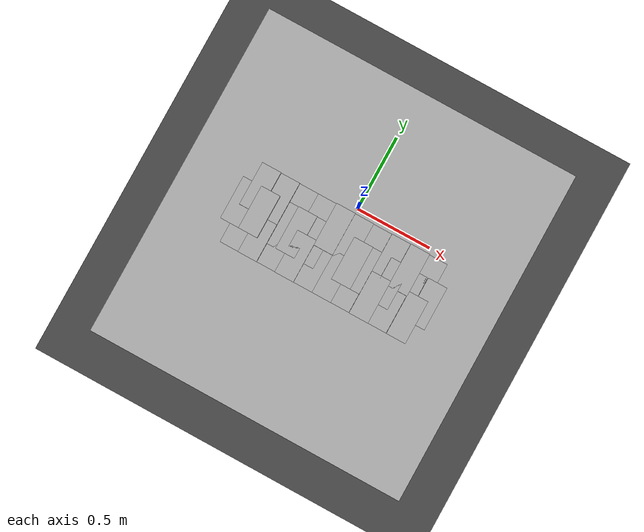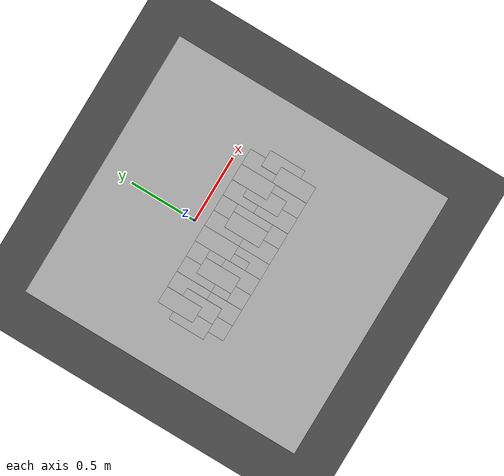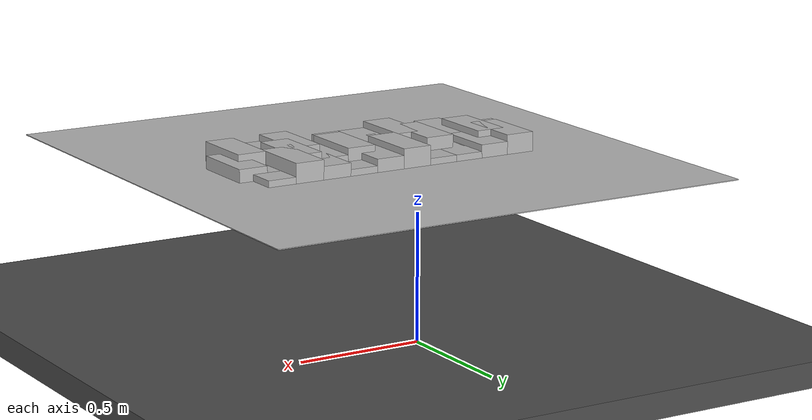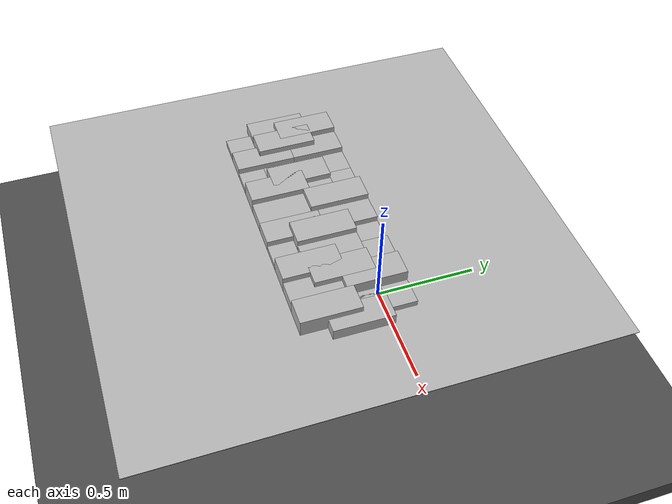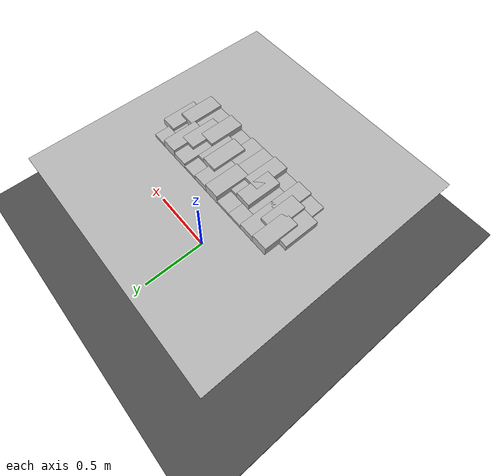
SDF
<sdf version="1.6">
 <world name="default">
  <model name="ground_plane">
   <static>1</static>
   <link name="link">
    <collision name="collision">
     <geometry><plane><normal>0 0 1</normal><size>100 100</size></plane></geometry>
     <surface><friction><ode><mu>100</mu><mu2>50</mu2></ode></friction></surface>
    </collision>
    <visual name="visual">
     <cast_shadows>0</cast_shadows>
     <geometry><plane><normal>0 0 1</normal><size>100 100</size></plane></geometry>
     <material>
      <script><uri>file://media/materials/scripts/gazebo.material</uri><name>Gazebo/Grey</name></script>
     </material>
    </visual>
   </link>
  </model>
  <model name="frc2016_roughterrain_0">
   <link name="link_clone_4">
    <pose>0.109709 -0.354979 -0.073164 0 -0 0</pose>
    <inertial>
     <inertia><ixx>nan</ixx><ixy>0</ixy><ixz>0</ixz><iyy>nan</iyy><iyz>0</iyz><izz>nan</izz></inertia>
     <mass>0</mass>
    </inertial>
    <visual name="platform">
     <pose>0 0 0.08269 0 -0 0</pose>
     <geometry><box><size>1.91826 2.01688 0.003175</size></box></geometry>
     <material><shader type="pixel"/></material>
    </visual>
    <visual name="row1_block1_sm">
     <pose>0.51435 0.1143 0.09698 0 -0 0</pose>
     <geometry><box><size>0.115452 0.257474 0.0254</size></box></geometry>
     <material><shader type="pixel"/></material>
    </visual>
    <visual name="row1_block4_sm">
     <pose>0.17145 0.1143 0.09698 0 -0 0</pose>
     <geometry><box><size>0.115452 0.257474 0.0254</size></box></geometry>
     <material><shader type="pixel"/></material>
    </visual>
    <visual name="row1_block3_md">
     <pose>0.28575 0.1143 0.10968 0 -0 0</pose>
     <geometry><box><size>0.115452 0.257474 0.0508</size></box></geometry>
     <material><shader type="pixel"/></material>
    </visual>
    <visual name="row1_block2_lg">
     <pose>0.40005 0.1143 0.12238 0 -0 0</pose>
     <geometry><box><size>0.115452 0.257474 0.0762</size></box></geometry>
     <material><shader type="pixel"/></material>
    </visual>
    <visual name="row1_block5_md">
     <pose>0.05715 0.1143 0.10968 0 -0 0</pose>
     <geometry><box><size>0.115452 0.257474 0.0508</size></box></geometry>
     <material><shader type="pixel"/></material>
    </visual>
    <visual name="row1_block6_lg">
     <pose>-0.05715 0.1143 0.12238 0 -0 0</pose>
     <geometry><box><size>0.115452 0.257474 0.0762</size></box></geometry>
     <material><shader type="pixel"/></material>
    </visual>
    <visual name="row1_block8_sm">
     <pose>-0.28575 0.1143 0.09698 0 -0 0</pose>
     <geometry><box><size>0.115452 0.257474 0.0254</size></box></geometry>
     <material><shader type="pixel"/></material>
    </visual>
    <visual name="row1_block7_sm">
     <pose>-0.17145 0.1143 0.09698 0 -0 0</pose>
     <geometry><box><size>0.115452 0.257474 0.0254</size></box></geometry>
     <material><shader type="pixel"/></material>
    </visual>
    <visual name="row1_block9_md">
     <pose>-0.40005 0.1143 0.10968 0 -0 0</pose>
     <geometry><box><size>0.115452 0.257474 0.0508</size></box></geometry>
     <material><shader type="pixel"/></material>
    </visual>
    <visual name="row1_block10_lg">
     <pose>-0.51435 0.1143 0.12238 0 -0 0</pose>
     <geometry><box><size>0.115452 0.257474 0.0762</size></box></geometry>
     <material><shader type="pixel"/></material>
    </visual>
    <visual name="row2_block1_md">
     <pose>0.5715 0 0.10968 0 -0 0</pose>
     <geometry><box><size>0.115452 0.257474 0.0508</size></box></geometry>
     <material><shader type="pixel"/></material>
    </visual>
    <visual name="row2_block2_sm">
     <pose>0.4572 0 0.09698 0 -0 0</pose>
     <geometry><box><size>0.115452 0.257474 0.0254</size></box></geometry>
     <material><shader type="pixel"/></material>
    </visual>
    <visual name="row2_block3_lg">
     <pose>0.3429 0 0.12238 0 -0 0</pose>
     <geometry><box><size>0.115452 0.257474 0.0762</size></box></geometry>
     <material><shader type="pixel"/></material>
    </visual>
    <visual name="row2_block4_md">
     <pose>0.2286 0 0.10968 0 -0 0</pose>
     <geometry><box><size>0.115452 0.257474 0.0508</size></box></geometry>
     <material><shader type="pixel"/></material>
    </visual>
    <visual name="row2_block5_lg">
     <pose>0.1143 0 0.12238 0 -0 0</pose>
     <geometry><box><size>0.115452 0.257474 0.0762</size></box></geometry>
     <material><shader type="pixel"/></material>
    </visual>
    <visual name="row2_block6_sm">
     <pose>0 0 0.09698 0 -0 0</pose>
     <geometry><box><size>0.115452 0.257474 0.0254</size></box></geometry>
     <material><shader type="pixel"/></material>
    </visual>
    <visual name="row2_block7_md">
     <pose>-0.1143 0 0.10968 0 -0 0</pose>
     <geometry><box><size>0.115452 0.257474 0.0508</size></box></geometry>
     <material><shader type="pixel"/></material>
    </visual>
    <visual name="row2_block8_lg">
     <pose>-0.2286 0 0.12238 0 -0 0</pose>
     <geometry><box><size>0.115452 0.257474 0.0762</size></box></geometry>
     <material><shader type="pixel"/></material>
    </visual>
    <visual name="row2_block9_sm">
     <pose>-0.3429 0 0.09698 0 -0 0</pose>
     <geometry><box><size>0.115452 0.257474 0.0254</size></box></geometry>
     <material><shader type="pixel"/></material>
    </visual>
    <visual name="row2_block10_lg">
     <pose>-0.4572 0 0.12238 0 -0 0</pose>
     <geometry><box><size>0.115452 0.257474 0.0762</size></box></geometry>
     <material><shader type="pixel"/></material>
    </visual>
    <visual name="row2_block11_md">
     <pose>-0.5715 0 0.10968 0 -0 0</pose>
     <geometry><box><size>0.115452 0.257474 0.0508</size></box></geometry>
     <material><shader type="pixel"/></material>
    </visual>
    <visual name="row3_block2_md">
     <pose>0.40005 -0.1143 0.10968 0 -0 0</pose>
     <geometry><box><size>0.115452 0.257474 0.0508</size></box></geometry>
     <material><shader type="pixel"/></material>
    </visual>
    <visual name="row3_block1_lg">
     <pose>0.51435 -0.1143 0.12238 0 -0 0</pose>
     <geometry><box><size>0.115452 0.257474 0.0762</size></box></geometry>
     <material><shader type="pixel"/></material>
    </visual>
    <visual name="row3_block3_lg">
     <pose>0.28575 -0.1143 0.12238 0 -0 0</pose>
     <geometry><box><size>0.115452 0.257474 0.0762</size></box></geometry>
     <material><shader type="pixel"/></material>
    </visual>
    <visual name="row3_block4_sm">
     <pose>0.17145 -0.1143 0.09698 0 -0 0</pose>
     <geometry><box><size>0.115452 0.257474 0.0254</size></box></geometry>
     <material><shader type="pixel"/></material>
    </visual>
    <visual name="row3_block5_md">
     <pose>0.05715 -0.1143 0.10968 0 -0 0</pose>
     <geometry><box><size>0.115452 0.257474 0.0508</size></box></geometry>
     <material><shader type="pixel"/></material>
    </visual>
    <visual name="row3_block6_md">
     <pose>-0.05715 -0.1143 0.10968 0 -0 0</pose>
     <geometry><box><size>0.115452 0.257474 0.0508</size></box></geometry>
     <material><shader type="pixel"/></material>
    </visual>
    <visual name="row3_block8_sm">
     <pose>-0.28575 -0.1143 0.09698 0 -0 0</pose>
     <geometry><box><size>0.115452 0.257474 0.0254</size></box></geometry>
     <material><shader type="pixel"/></material>
    </visual>
    <visual name="row3_block7_lg">
     <pose>-0.17145 -0.1143 0.12238 0 -0 0</pose>
     <geometry><box><size>0.115452 0.257474 0.0762</size></box></geometry>
     <material><shader type="pixel"/></material>
    </visual>
    <visual name="row3_block9_md">
     <pose>-0.40005 -0.1143 0.10968 0 -0 0</pose>
     <geometry><box><size>0.115452 0.257474 0.0508</size></box></geometry>
     <material><shader type="pixel"/></material>
    </visual>
    <visual name="row3_block10_sm">
     <pose>-0.51435 -0.1143 0.09698 0 -0 0</pose>
     <geometry><box><size>0.115452 0.257474 0.0254</size></box></geometry>
     <material><shader type="pixel"/></material>
    </visual>
    <collision name="row2_block5_lg_0">
     <pose>0.1143 0 0.12238 0 -0 0</pose>
     <geometry><box><size>0.115452 0.257474 0.0762</size></box></geometry>
     <surface>
      <friction>
       <ode><mu>1</mu><mu2>1</mu2><fdir1>0 0 0</fdir1><slip1>0</slip1><slip2>0</slip2></ode>
       <torsional>
        <coefficient>1</coefficient>
        <patch_radius>0</patch_radius>
        <surface_radius>0</surface_radius>
        <use_patch_radius>1</use_patch_radius>
        <ode><slip>0</slip></ode>
       </torsional>
      </friction>
      <bounce><restitution_coefficient>0</restitution_coefficient><threshold>1e+06</threshold></bounce>
      <contact>
       <collide_without_contact>0</collide_without_contact>
       <collide_without_contact_bitmask>1</collide_without_contact_bitmask>
       <collide_bitmask>1</collide_bitmask>
       <ode>
        <soft_cfm>0</soft_cfm>
        <soft_erp>0.2</soft_erp>
        <kp>1e+13</kp>
        <kd>1</kd>
        <max_vel>0.01</max_vel>
        <min_depth>0</min_depth>
       </ode>
       <bullet>
        <split_impulse>1</split_impulse>
        <split_impulse_penetration_threshold>-0.01</split_impulse_penetration_threshold>
        <soft_cfm>0</soft_cfm>
        <soft_erp>0.2</soft_erp>
        <kp>1e+13</kp>
        <kd>1</kd>
       </bullet>
      </contact>
     </surface>
    </collision>
    <collision name="platform_0">
     <pose>0 0 0.08269 0 -0 0</pose>
     <geometry><box><size>1.91826 2.01688 0.003175</size></box></geometry>
     <surface>
      <friction>
       <ode><mu>1</mu><mu2>1</mu2><fdir1>0 0 0</fdir1><slip1>0</slip1><slip2>0</slip2></ode>
       <torsional>
        <coefficient>1</coefficient>
        <patch_radius>0</patch_radius>
        <surface_radius>0</surface_radius>
        <use_patch_radius>1</use_patch_radius>
        <ode><slip>0</slip></ode>
       </torsional>
      </friction>
      <bounce><restitution_coefficient>0</restitution_coefficient><threshold>1e+06</threshold></bounce>
      <contact>
       <collide_without_contact>0</collide_without_contact>
       <collide_without_contact_bitmask>1</collide_without_contact_bitmask>
       <collide_bitmask>1</collide_bitmask>
       <ode>
        <soft_cfm>0</soft_cfm>
        <soft_erp>0.2</soft_erp>
        <kp>1e+13</kp>
        <kd>1</kd>
        <max_vel>0.01</max_vel>
        <min_depth>0</min_depth>
       </ode>
       <bullet>
        <split_impulse>1</split_impulse>
        <split_impulse_penetration_threshold>-0.01</split_impulse_penetration_threshold>
        <soft_cfm>0</soft_cfm>
        <soft_erp>0.2</soft_erp>
        <kp>1e+13</kp>
        <kd>1</kd>
       </bullet>
      </contact>
     </surface>
    </collision>
    <collision name="row1_block1_sm_0">
     <pose>0.51435 0.1143 0.09698 0 -0 0</pose>
     <geometry><box><size>0.115452 0.257474 0.0254</size></box></geometry>
     <surface>
      <friction>
       <ode><mu>1</mu><mu2>1</mu2><fdir1>0 0 0</fdir1><slip1>0</slip1><slip2>0</slip2></ode>
       <torsional>
        <coefficient>1</coefficient>
        <patch_radius>0</patch_radius>
        <surface_radius>0</surface_radius>
        <use_patch_radius>1</use_patch_radius>
        <ode><slip>0</slip></ode>
       </torsional>
      </friction>
      <bounce><restitution_coefficient>0</restitution_coefficient><threshold>1e+06</threshold></bounce>
      <contact>
       <collide_without_contact>0</collide_without_contact>
       <collide_without_contact_bitmask>1</collide_without_contact_bitmask>
       <collide_bitmask>1</collide_bitmask>
       <ode>
        <soft_cfm>0</soft_cfm>
        <soft_erp>0.2</soft_erp>
        <kp>1e+13</kp>
        <kd>1</kd>
        <max_vel>0.01</max_vel>
        <min_depth>0</min_depth>
       </ode>
       <bullet>
        <split_impulse>1</split_impulse>
        <split_impulse_penetration_threshold>-0.01</split_impulse_penetration_threshold>
        <soft_cfm>0</soft_cfm>
        <soft_erp>0.2</soft_erp>
        <kp>1e+13</kp>
        <kd>1</kd>
       </bullet>
      </contact>
     </surface>
    </collision>
    <collision name="row1_block2_lg_0">
     <pose>0.40005 0.1143 0.12238 0 -0 0</pose>
     <geometry><box><size>0.115452 0.257474 0.0762</size></box></geometry>
     <surface>
      <friction>
       <ode><mu>1</mu><mu2>1</mu2><fdir1>0 0 0</fdir1><slip1>0</slip1><slip2>0</slip2></ode>
       <torsional>
        <coefficient>1</coefficient>
        <patch_radius>0</patch_radius>
        <surface_radius>0</surface_radius>
        <use_patch_radius>1</use_patch_radius>
        <ode><slip>0</slip></ode>
       </torsional>
      </friction>
      <bounce><restitution_coefficient>0</restitution_coefficient><threshold>1e+06</threshold></bounce>
      <contact>
       <collide_without_contact>0</collide_without_contact>
       <collide_without_contact_bitmask>1</collide_without_contact_bitmask>
       <collide_bitmask>1</collide_bitmask>
       <ode>
        <soft_cfm>0</soft_cfm>
        <soft_erp>0.2</soft_erp>
        <kp>1e+13</kp>
        <kd>1</kd>
        <max_vel>0.01</max_vel>
        <min_depth>0</min_depth>
       </ode>
       <bullet>
        <split_impulse>1</split_impulse>
        <split_impulse_penetration_threshold>-0.01</split_impulse_penetration_threshold>
        <soft_cfm>0</soft_cfm>
        <soft_erp>0.2</soft_erp>
        <kp>1e+13</kp>
        <kd>1</kd>
       </bullet>
      </contact>
     </surface>
    </collision>
    <collision name="row1_block3_md_0">
     <pose>0.28575 0.1143 0.10968 0 -0 0</pose>
     <geometry><box><size>0.115452 0.257474 0.0508</size></box></geometry>
     <surface>
      <friction>
       <ode><mu>1</mu><mu2>1</mu2><fdir1>0 0 0</fdir1><slip1>0</slip1><slip2>0</slip2></ode>
       <torsional>
        <coefficient>1</coefficient>
        <patch_radius>0</patch_radius>
        <surface_radius>0</surface_radius>
        <use_patch_radius>1</use_patch_radius>
        <ode><slip>0</slip></ode>
       </torsional>
      </friction>
      <bounce><restitution_coefficient>0</restitution_coefficient><threshold>1e+06</threshold></bounce>
      <contact>
       <collide_without_contact>0</collide_without_contact>
       <collide_without_contact_bitmask>1</collide_without_contact_bitmask>
       <collide_bitmask>1</collide_bitmask>
       <ode>
        <soft_cfm>0</soft_cfm>
        <soft_erp>0.2</soft_erp>
        <kp>1e+13</kp>
        <kd>1</kd>
        <max_vel>0.01</max_vel>
        <min_depth>0</min_depth>
       </ode>
       <bullet>
        <split_impulse>1</split_impulse>
        <split_impulse_penetration_threshold>-0.01</split_impulse_penetration_threshold>
        <soft_cfm>0</soft_cfm>
        <soft_erp>0.2</soft_erp>
        <kp>1e+13</kp>
        <kd>1</kd>
       </bullet>
      </contact>
     </surface>
    </collision>
    <collision name="row1_block5_md_0">
     <pose>0.05715 0.1143 0.10968 0 -0 0</pose>
     <geometry><box><size>0.115452 0.257474 0.0508</size></box></geometry>
     <surface>
      <friction>
       <ode><mu>1</mu><mu2>1</mu2><fdir1>0 0 0</fdir1><slip1>0</slip1><slip2>0</slip2></ode>
       <torsional>
        <coefficient>1</coefficient>
        <patch_radius>0</patch_radius>
        <surface_radius>0</surface_radius>
        <use_patch_radius>1</use_patch_radius>
        <ode><slip>0</slip></ode>
       </torsional>
      </friction>
      <bounce><restitution_coefficient>0</restitution_coefficient><threshold>1e+06</threshold></bounce>
      <contact>
       <collide_without_contact>0</collide_without_contact>
       <collide_without_contact_bitmask>1</collide_without_contact_bitmask>
       <collide_bitmask>1</collide_bitmask>
       <ode>
        <soft_cfm>0</soft_cfm>
        <soft_erp>0.2</soft_erp>
        <kp>1e+13</kp>
        <kd>1</kd>
        <max_vel>0.01</max_vel>
        <min_depth>0</min_depth>
       </ode>
       <bullet>
        <split_impulse>1</split_impulse>
        <split_impulse_penetration_threshold>-0.01</split_impulse_penetration_threshold>
        <soft_cfm>0</soft_cfm>
        <soft_erp>0.2</soft_erp>
        <kp>1e+13</kp>
        <kd>1</kd>
       </bullet>
      </contact>
     </surface>
    </collision>
    <collision name="row1_block4_sm_0">
     <pose>0.17145 0.1143 0.09698 0 -0 0</pose>
     <geometry><box><size>0.115452 0.257474 0.0254</size></box></geometry>
     <surface>
      <friction>
       <ode><mu>1</mu><mu2>1</mu2><fdir1>0 0 0</fdir1><slip1>0</slip1><slip2>0</slip2></ode>
       <torsional>
        <coefficient>1</coefficient>
        <patch_radius>0</patch_radius>
        <surface_radius>0</surface_radius>
        <use_patch_radius>1</use_patch_radius>
        <ode><slip>0</slip></ode>
       </torsional>
      </friction>
      <bounce><restitution_coefficient>0</restitution_coefficient><threshold>1e+06</threshold></bounce>
      <contact>
       <collide_without_contact>0</collide_without_contact>
       <collide_without_contact_bitmask>1</collide_without_contact_bitmask>
       <collide_bitmask>1</collide_bitmask>
       <ode>
        <soft_cfm>0</soft_cfm>
        <soft_erp>0.2</soft_erp>
        <kp>1e+13</kp>
        <kd>1</kd>
        <max_vel>0.01</max_vel>
        <min_depth>0</min_depth>
       </ode>
       <bullet>
        <split_impulse>1</split_impulse>
        <split_impulse_penetration_threshold>-0.01</split_impulse_penetration_threshold>
        <soft_cfm>0</soft_cfm>
        <soft_erp>0.2</soft_erp>
        <kp>1e+13</kp>
        <kd>1</kd>
       </bullet>
      </contact>
     </surface>
    </collision>
    <collision name="row1_block10_lg_0">
     <pose>-0.51435 0.1143 0.12238 0 -0 0</pose>
     <geometry><box><size>0.115452 0.257474 0.0762</size></box></geometry>
     <surface>
      <friction>
       <ode><mu>1</mu><mu2>1</mu2><fdir1>0 0 0</fdir1><slip1>0</slip1><slip2>0</slip2></ode>
       <torsional>
        <coefficient>1</coefficient>
        <patch_radius>0</patch_radius>
        <surface_radius>0</surface_radius>
        <use_patch_radius>1</use_patch_radius>
        <ode><slip>0</slip></ode>
       </torsional>
      </friction>
      <bounce><restitution_coefficient>0</restitution_coefficient><threshold>1e+06</threshold></bounce>
      <contact>
       <collide_without_contact>0</collide_without_contact>
       <collide_without_contact_bitmask>1</collide_without_contact_bitmask>
       <collide_bitmask>1</collide_bitmask>
       <ode>
        <soft_cfm>0</soft_cfm>
        <soft_erp>0.2</soft_erp>
        <kp>1e+13</kp>
        <kd>1</kd>
        <max_vel>0.01</max_vel>
        <min_depth>0</min_depth>
       </ode>
       <bullet>
        <split_impulse>1</split_impulse>
        <split_impulse_penetration_threshold>-0.01</split_impulse_penetration_threshold>
        <soft_cfm>0</soft_cfm>
        <soft_erp>0.2</soft_erp>
        <kp>1e+13</kp>
        <kd>1</kd>
       </bullet>
      </contact>
     </surface>
    </collision>
    <collision name="row1_block6_lg_0">
     <pose>-0.05715 0.1143 0.12238 0 -0 0</pose>
     <geometry><box><size>0.115452 0.257474 0.0762</size></box></geometry>
     <surface>
      <friction>
       <ode><mu>1</mu><mu2>1</mu2><fdir1>0 0 0</fdir1><slip1>0</slip1><slip2>0</slip2></ode>
       <torsional>
        <coefficient>1</coefficient>
        <patch_radius>0</patch_radius>
        <surface_radius>0</surface_radius>
        <use_patch_radius>1</use_patch_radius>
        <ode><slip>0</slip></ode>
       </torsional>
      </friction>
      <bounce><restitution_coefficient>0</restitution_coefficient><threshold>1e+06</threshold></bounce>
      <contact>
       <collide_without_contact>0</collide_without_contact>
       <collide_without_contact_bitmask>1</collide_without_contact_bitmask>
       <collide_bitmask>1</collide_bitmask>
       <ode>
        <soft_cfm>0</soft_cfm>
        <soft_erp>0.2</soft_erp>
        <kp>1e+13</kp>
        <kd>1</kd>
        <max_vel>0.01</max_vel>
        <min_depth>0</min_depth>
       </ode>
       <bullet>
        <split_impulse>1</split_impulse>
        <split_impulse_penetration_threshold>-0.01</split_impulse_penetration_threshold>
        <soft_cfm>0</soft_cfm>
        <soft_erp>0.2</soft_erp>
        <kp>1e+13</kp>
        <kd>1</kd>
       </bullet>
      </contact>
     </surface>
    </collision>
    <collision name="row1_block7_sm_0">
     <pose>-0.17145 0.1143 0.09698 0 -0 0</pose>
     <geometry><box><size>0.115452 0.257474 0.0254</size></box></geometry>
     <surface>
      <friction>
       <ode><mu>1</mu><mu2>1</mu2><fdir1>0 0 0</fdir1><slip1>0</slip1><slip2>0</slip2></ode>
       <torsional>
        <coefficient>1</coefficient>
        <patch_radius>0</patch_radius>
        <surface_radius>0</surface_radius>
        <use_patch_radius>1</use_patch_radius>
        <ode><slip>0</slip></ode>
       </torsional>
      </friction>
      <bounce><restitution_coefficient>0</restitution_coefficient><threshold>1e+06</threshold></bounce>
      <contact>
       <collide_without_contact>0</collide_without_contact>
       <collide_without_contact_bitmask>1</collide_without_contact_bitmask>
       <collide_bitmask>1</collide_bitmask>
       <ode>
        <soft_cfm>0</soft_cfm>
        <soft_erp>0.2</soft_erp>
        <kp>1e+13</kp>
        <kd>1</kd>
        <max_vel>0.01</max_vel>
        <min_depth>0</min_depth>
       </ode>
       <bullet>
        <split_impulse>1</split_impulse>
        <split_impulse_penetration_threshold>-0.01</split_impulse_penetration_threshold>
        <soft_cfm>0</soft_cfm>
        <soft_erp>0.2</soft_erp>
        <kp>1e+13</kp>
        <kd>1</kd>
       </bullet>
      </contact>
     </surface>
    </collision>
    <collision name="row1_block8_sm_0">
     <pose>-0.28575 0.1143 0.09698 0 -0 0</pose>
     <geometry><box><size>0.115452 0.257474 0.0254</size></box></geometry>
     <surface>
      <friction>
       <ode><mu>1</mu><mu2>1</mu2><fdir1>0 0 0</fdir1><slip1>0</slip1><slip2>0</slip2></ode>
       <torsional>
        <coefficient>1</coefficient>
        <patch_radius>0</patch_radius>
        <surface_radius>0</surface_radius>
        <use_patch_radius>1</use_patch_radius>
        <ode><slip>0</slip></ode>
       </torsional>
      </friction>
      <bounce><restitution_coefficient>0</restitution_coefficient><threshold>1e+06</threshold></bounce>
      <contact>
       <collide_without_contact>0</collide_without_contact>
       <collide_without_contact_bitmask>1</collide_without_contact_bitmask>
       <collide_bitmask>1</collide_bitmask>
       <ode>
        <soft_cfm>0</soft_cfm>
        <soft_erp>0.2</soft_erp>
        <kp>1e+13</kp>
        <kd>1</kd>
        <max_vel>0.01</max_vel>
        <min_depth>0</min_depth>
       </ode>
       <bullet>
        <split_impulse>1</split_impulse>
        <split_impulse_penetration_threshold>-0.01</split_impulse_penetration_threshold>
        <soft_cfm>0</soft_cfm>
        <soft_erp>0.2</soft_erp>
        <kp>1e+13</kp>
        <kd>1</kd>
       </bullet>
      </contact>
     </surface>
    </collision>
    <collision name="row1_block9_md_0">
     <pose>-0.40005 0.1143 0.10968 0 -0 0</pose>
     <geometry><box><size>0.115452 0.257474 0.0508</size></box></geometry>
     <surface>
      <friction>
       <ode><mu>1</mu><mu2>1</mu2><fdir1>0 0 0</fdir1><slip1>0</slip1><slip2>0</slip2></ode>
       <torsional>
        <coefficient>1</coefficient>
        <patch_radius>0</patch_radius>
        <surface_radius>0</surface_radius>
        <use_patch_radius>1</use_patch_radius>
        <ode><slip>0</slip></ode>
       </torsional>
      </friction>
      <bounce><restitution_coefficient>0</restitution_coefficient><threshold>1e+06</threshold></bounce>
      <contact>
       <collide_without_contact>0</collide_without_contact>
       <collide_without_contact_bitmask>1</collide_without_contact_bitmask>
       <collide_bitmask>1</collide_bitmask>
       <ode>
        <soft_cfm>0</soft_cfm>
        <soft_erp>0.2</soft_erp>
        <kp>1e+13</kp>
        <kd>1</kd>
        <max_vel>0.01</max_vel>
        <min_depth>0</min_depth>
       </ode>
       <bullet>
        <split_impulse>1</split_impulse>
        <split_impulse_penetration_threshold>-0.01</split_impulse_penetration_threshold>
        <soft_cfm>0</soft_cfm>
        <soft_erp>0.2</soft_erp>
        <kp>1e+13</kp>
        <kd>1</kd>
       </bullet>
      </contact>
     </surface>
    </collision>
    <collision name="row2_block4_md_0">
     <pose>0.2286 0 0.10968 0 -0 0</pose>
     <geometry><box><size>0.115452 0.257474 0.0508</size></box></geometry>
     <surface>
      <friction>
       <ode><mu>1</mu><mu2>1</mu2><fdir1>0 0 0</fdir1><slip1>0</slip1><slip2>0</slip2></ode>
       <torsional>
        <coefficient>1</coefficient>
        <patch_radius>0</patch_radius>
        <surface_radius>0</surface_radius>
        <use_patch_radius>1</use_patch_radius>
        <ode><slip>0</slip></ode>
       </torsional>
      </friction>
      <bounce><restitution_coefficient>0</restitution_coefficient><threshold>1e+06</threshold></bounce>
      <contact>
       <collide_without_contact>0</collide_without_contact>
       <collide_without_contact_bitmask>1</collide_without_contact_bitmask>
       <collide_bitmask>1</collide_bitmask>
       <ode>
        <soft_cfm>0</soft_cfm>
        <soft_erp>0.2</soft_erp>
        <kp>1e+13</kp>
        <kd>1</kd>
        <max_vel>0.01</max_vel>
        <min_depth>0</min_depth>
       </ode>
       <bullet>
        <split_impulse>1</split_impulse>
        <split_impulse_penetration_threshold>-0.01</split_impulse_penetration_threshold>
        <soft_cfm>0</soft_cfm>
        <soft_erp>0.2</soft_erp>
        <kp>1e+13</kp>
        <kd>1</kd>
       </bullet>
      </contact>
     </surface>
    </collision>
    <collision name="row2_block1_md_0">
     <pose>0.5715 0 0.10968 0 -0 0</pose>
     <geometry><box><size>0.115452 0.257474 0.0508</size></box></geometry>
     <surface>
      <friction>
       <ode><mu>1</mu><mu2>1</mu2><fdir1>0 0 0</fdir1><slip1>0</slip1><slip2>0</slip2></ode>
       <torsional>
        <coefficient>1</coefficient>
        <patch_radius>0</patch_radius>
        <surface_radius>0</surface_radius>
        <use_patch_radius>1</use_patch_radius>
        <ode><slip>0</slip></ode>
       </torsional>
      </friction>
      <bounce><restitution_coefficient>0</restitution_coefficient><threshold>1e+06</threshold></bounce>
      <contact>
       <collide_without_contact>0</collide_without_contact>
       <collide_without_contact_bitmask>1</collide_without_contact_bitmask>
       <collide_bitmask>1</collide_bitmask>
       <ode>
        <soft_cfm>0</soft_cfm>
        <soft_erp>0.2</soft_erp>
        <kp>1e+13</kp>
        <kd>1</kd>
        <max_vel>0.01</max_vel>
        <min_depth>0</min_depth>
       </ode>
       <bullet>
        <split_impulse>1</split_impulse>
        <split_impulse_penetration_threshold>-0.01</split_impulse_penetration_threshold>
        <soft_cfm>0</soft_cfm>
        <soft_erp>0.2</soft_erp>
        <kp>1e+13</kp>
        <kd>1</kd>
       </bullet>
      </contact>
     </surface>
    </collision>
    <collision name="row2_block2_sm_0">
     <pose>0.4572 0 0.09698 0 -0 0</pose>
     <geometry><box><size>0.115452 0.257474 0.0254</size></box></geometry>
     <surface>
      <friction>
       <ode><mu>1</mu><mu2>1</mu2><fdir1>0 0 0</fdir1><slip1>0</slip1><slip2>0</slip2></ode>
       <torsional>
        <coefficient>1</coefficient>
        <patch_radius>0</patch_radius>
        <surface_radius>0</surface_radius>
        <use_patch_radius>1</use_patch_radius>
        <ode><slip>0</slip></ode>
       </torsional>
      </friction>
      <bounce><restitution_coefficient>0</restitution_coefficient><threshold>1e+06</threshold></bounce>
      <contact>
       <collide_without_contact>0</collide_without_contact>
       <collide_without_contact_bitmask>1</collide_without_contact_bitmask>
       <collide_bitmask>1</collide_bitmask>
       <ode>
        <soft_cfm>0</soft_cfm>
        <soft_erp>0.2</soft_erp>
        <kp>1e+13</kp>
        <kd>1</kd>
        <max_vel>0.01</max_vel>
        <min_depth>0</min_depth>
       </ode>
       <bullet>
        <split_impulse>1</split_impulse>
        <split_impulse_penetration_threshold>-0.01</split_impulse_penetration_threshold>
        <soft_cfm>0</soft_cfm>
        <soft_erp>0.2</soft_erp>
        <kp>1e+13</kp>
        <kd>1</kd>
       </bullet>
      </contact>
     </surface>
    </collision>
    <collision name="row2_block3_lg_0">
     <pose>0.3429 0 0.12238 0 -0 0</pose>
     <geometry><box><size>0.115452 0.257474 0.0762</size></box></geometry>
     <surface>
      <friction>
       <ode><mu>1</mu><mu2>1</mu2><fdir1>0 0 0</fdir1><slip1>0</slip1><slip2>0</slip2></ode>
       <torsional>
        <coefficient>1</coefficient>
        <patch_radius>0</patch_radius>
        <surface_radius>0</surface_radius>
        <use_patch_radius>1</use_patch_radius>
        <ode><slip>0</slip></ode>
       </torsional>
      </friction>
      <bounce><restitution_coefficient>0</restitution_coefficient><threshold>1e+06</threshold></bounce>
      <contact>
       <collide_without_contact>0</collide_without_contact>
       <collide_without_contact_bitmask>1</collide_without_contact_bitmask>
       <collide_bitmask>1</collide_bitmask>
       <ode>
        <soft_cfm>0</soft_cfm>
        <soft_erp>0.2</soft_erp>
        <kp>1e+13</kp>
        <kd>1</kd>
        <max_vel>0.01</max_vel>
        <min_depth>0</min_depth>
       </ode>
       <bullet>
        <split_impulse>1</split_impulse>
        <split_impulse_penetration_threshold>-0.01</split_impulse_penetration_threshold>
        <soft_cfm>0</soft_cfm>
        <soft_erp>0.2</soft_erp>
        <kp>1e+13</kp>
        <kd>1</kd>
       </bullet>
      </contact>
     </surface>
    </collision>
    <collision name="row2_block8_lg_0">
     <pose>-0.2286 0 0.12238 0 -0 0</pose>
     <geometry><box><size>0.115452 0.257474 0.0762</size></box></geometry>
     <surface>
      <friction>
       <ode><mu>1</mu><mu2>1</mu2><fdir1>0 0 0</fdir1><slip1>0</slip1><slip2>0</slip2></ode>
       <torsional>
        <coefficient>1</coefficient>
        <patch_radius>0</patch_radius>
        <surface_radius>0</surface_radius>
        <use_patch_radius>1</use_patch_radius>
        <ode><slip>0</slip></ode>
       </torsional>
      </friction>
      <bounce><restitution_coefficient>0</restitution_coefficient><threshold>1e+06</threshold></bounce>
      <contact>
       <collide_without_contact>0</collide_without_contact>
       <collide_without_contact_bitmask>1</collide_without_contact_bitmask>
       <collide_bitmask>1</collide_bitmask>
       <ode>
        <soft_cfm>0</soft_cfm>
        <soft_erp>0.2</soft_erp>
        <kp>1e+13</kp>
        <kd>1</kd>
        <max_vel>0.01</max_vel>
        <min_depth>0</min_depth>
       </ode>
       <bullet>
        <split_impulse>1</split_impulse>
        <split_impulse_penetration_threshold>-0.01</split_impulse_penetration_threshold>
        <soft_cfm>0</soft_cfm>
        <soft_erp>0.2</soft_erp>
        <kp>1e+13</kp>
        <kd>1</kd>
       </bullet>
      </contact>
     </surface>
    </collision>
    <collision name="row2_block6_sm_0">
     <pose>0 0 0.09698 0 -0 0</pose>
     <geometry><box><size>0.115452 0.257474 0.0254</size></box></geometry>
     <surface>
      <friction>
       <ode><mu>1</mu><mu2>1</mu2><fdir1>0 0 0</fdir1><slip1>0</slip1><slip2>0</slip2></ode>
       <torsional>
        <coefficient>1</coefficient>
        <patch_radius>0</patch_radius>
        <surface_radius>0</surface_radius>
        <use_patch_radius>1</use_patch_radius>
        <ode><slip>0</slip></ode>
       </torsional>
      </friction>
      <bounce><restitution_coefficient>0</restitution_coefficient><threshold>1e+06</threshold></bounce>
      <contact>
       <collide_without_contact>0</collide_without_contact>
       <collide_without_contact_bitmask>1</collide_without_contact_bitmask>
       <collide_bitmask>1</collide_bitmask>
       <ode>
        <soft_cfm>0</soft_cfm>
        <soft_erp>0.2</soft_erp>
        <kp>1e+13</kp>
        <kd>1</kd>
        <max_vel>0.01</max_vel>
        <min_depth>0</min_depth>
       </ode>
       <bullet>
        <split_impulse>1</split_impulse>
        <split_impulse_penetration_threshold>-0.01</split_impulse_penetration_threshold>
        <soft_cfm>0</soft_cfm>
        <soft_erp>0.2</soft_erp>
        <kp>1e+13</kp>
        <kd>1</kd>
       </bullet>
      </contact>
     </surface>
    </collision>
    <collision name="row2_block7_md_0">
     <pose>-0.1143 0 0.10968 0 -0 0</pose>
     <geometry><box><size>0.115452 0.257474 0.0508</size></box></geometry>
     <surface>
      <friction>
       <ode><mu>1</mu><mu2>1</mu2><fdir1>0 0 0</fdir1><slip1>0</slip1><slip2>0</slip2></ode>
       <torsional>
        <coefficient>1</coefficient>
        <patch_radius>0</patch_radius>
        <surface_radius>0</surface_radius>
        <use_patch_radius>1</use_patch_radius>
        <ode><slip>0</slip></ode>
       </torsional>
      </friction>
      <bounce><restitution_coefficient>0</restitution_coefficient><threshold>1e+06</threshold></bounce>
      <contact>
       <collide_without_contact>0</collide_without_contact>
       <collide_without_contact_bitmask>1</collide_without_contact_bitmask>
       <collide_bitmask>1</collide_bitmask>
       <ode>
        <soft_cfm>0</soft_cfm>
        <soft_erp>0.2</soft_erp>
        <kp>1e+13</kp>
        <kd>1</kd>
        <max_vel>0.01</max_vel>
        <min_depth>0</min_depth>
       </ode>
       <bullet>
        <split_impulse>1</split_impulse>
        <split_impulse_penetration_threshold>-0.01</split_impulse_penetration_threshold>
        <soft_cfm>0</soft_cfm>
        <soft_erp>0.2</soft_erp>
        <kp>1e+13</kp>
        <kd>1</kd>
       </bullet>
      </contact>
     </surface>
    </collision>
    <collision name="row2_block10_lg_0">
     <pose>-0.4572 0 0.12238 0 -0 0</pose>
     <geometry><box><size>0.115452 0.257474 0.0762</size></box></geometry>
     <surface>
      <friction>
       <ode><mu>1</mu><mu2>1</mu2><fdir1>0 0 0</fdir1><slip1>0</slip1><slip2>0</slip2></ode>
       <torsional>
        <coefficient>1</coefficient>
        <patch_radius>0</patch_radius>
        <surface_radius>0</surface_radius>
        <use_patch_radius>1</use_patch_radius>
        <ode><slip>0</slip></ode>
       </torsional>
      </friction>
      <bounce><restitution_coefficient>0</restitution_coefficient><threshold>1e+06</threshold></bounce>
      <contact>
       <collide_without_contact>0</collide_without_contact>
       <collide_without_contact_bitmask>1</collide_without_contact_bitmask>
       <collide_bitmask>1</collide_bitmask>
       <ode>
        <soft_cfm>0</soft_cfm>
        <soft_erp>0.2</soft_erp>
        <kp>1e+13</kp>
        <kd>1</kd>
        <max_vel>0.01</max_vel>
        <min_depth>0</min_depth>
       </ode>
       <bullet>
        <split_impulse>1</split_impulse>
        <split_impulse_penetration_threshold>-0.01</split_impulse_penetration_threshold>
        <soft_cfm>0</soft_cfm>
        <soft_erp>0.2</soft_erp>
        <kp>1e+13</kp>
        <kd>1</kd>
       </bullet>
      </contact>
     </surface>
    </collision>
    <collision name="row2_block9_sm_0">
     <pose>-0.3429 0 0.09698 0 -0 0</pose>
     <geometry><box><size>0.115452 0.257474 0.0254</size></box></geometry>
     <surface>
      <friction>
       <ode><mu>1</mu><mu2>1</mu2><fdir1>0 0 0</fdir1><slip1>0</slip1><slip2>0</slip2></ode>
       <torsional>
        <coefficient>1</coefficient>
        <patch_radius>0</patch_radius>
        <surface_radius>0</surface_radius>
        <use_patch_radius>1</use_patch_radius>
        <ode><slip>0</slip></ode>
       </torsional>
      </friction>
      <bounce><restitution_coefficient>0</restitution_coefficient><threshold>1e+06</threshold></bounce>
      <contact>
       <collide_without_contact>0</collide_without_contact>
       <collide_without_contact_bitmask>1</collide_without_contact_bitmask>
       <collide_bitmask>1</collide_bitmask>
       <ode>
        <soft_cfm>0</soft_cfm>
        <soft_erp>0.2</soft_erp>
        <kp>1e+13</kp>
        <kd>1</kd>
        <max_vel>0.01</max_vel>
        <min_depth>0</min_depth>
       </ode>
       <bullet>
        <split_impulse>1</split_impulse>
        <split_impulse_penetration_threshold>-0.01</split_impulse_penetration_threshold>
        <soft_cfm>0</soft_cfm>
        <soft_erp>0.2</soft_erp>
        <kp>1e+13</kp>
        <kd>1</kd>
       </bullet>
      </contact>
     </surface>
    </collision>
    <collision name="row2_block11_md_0">
     <pose>-0.5715 0 0.10968 0 -0 0</pose>
     <geometry><box><size>0.115452 0.257474 0.0508</size></box></geometry>
     <surface>
      <friction>
       <ode><mu>1</mu><mu2>1</mu2><fdir1>0 0 0</fdir1><slip1>0</slip1><slip2>0</slip2></ode>
       <torsional>
        <coefficient>1</coefficient>
        <patch_radius>0</patch_radius>
        <surface_radius>0</surface_radius>
        <use_patch_radius>1</use_patch_radius>
        <ode><slip>0</slip></ode>
       </torsional>
      </friction>
      <bounce><restitution_coefficient>0</restitution_coefficient><threshold>1e+06</threshold></bounce>
      <contact>
       <collide_without_contact>0</collide_without_contact>
       <collide_without_contact_bitmask>1</collide_without_contact_bitmask>
       <collide_bitmask>1</collide_bitmask>
       <ode>
        <soft_cfm>0</soft_cfm>
        <soft_erp>0.2</soft_erp>
        <kp>1e+13</kp>
        <kd>1</kd>
        <max_vel>0.01</max_vel>
        <min_depth>0</min_depth>
       </ode>
       <bullet>
        <split_impulse>1</split_impulse>
        <split_impulse_penetration_threshold>-0.01</split_impulse_penetration_threshold>
        <soft_cfm>0</soft_cfm>
        <soft_erp>0.2</soft_erp>
        <kp>1e+13</kp>
        <kd>1</kd>
       </bullet>
      </contact>
     </surface>
    </collision>
    <collision name="row3_block2_md_0">
     <pose>0.40005 -0.1143 0.10968 0 -0 0</pose>
     <geometry><box><size>0.115452 0.257474 0.0508</size></box></geometry>
     <surface>
      <friction>
       <ode><mu>1</mu><mu2>1</mu2><fdir1>0 0 0</fdir1><slip1>0</slip1><slip2>0</slip2></ode>
       <torsional>
        <coefficient>1</coefficient>
        <patch_radius>0</patch_radius>
        <surface_radius>0</surface_radius>
        <use_patch_radius>1</use_patch_radius>
        <ode><slip>0</slip></ode>
       </torsional>
      </friction>
      <bounce><restitution_coefficient>0</restitution_coefficient><threshold>1e+06</threshold></bounce>
      <contact>
       <collide_without_contact>0</collide_without_contact>
       <collide_without_contact_bitmask>1</collide_without_contact_bitmask>
       <collide_bitmask>1</collide_bitmask>
       <ode>
        <soft_cfm>0</soft_cfm>
        <soft_erp>0.2</soft_erp>
        <kp>1e+13</kp>
        <kd>1</kd>
        <max_vel>0.01</max_vel>
        <min_depth>0</min_depth>
       </ode>
       <bullet>
        <split_impulse>1</split_impulse>
        <split_impulse_penetration_threshold>-0.01</split_impulse_penetration_threshold>
        <soft_cfm>0</soft_cfm>
        <soft_erp>0.2</soft_erp>
        <kp>1e+13</kp>
        <kd>1</kd>
       </bullet>
      </contact>
     </surface>
    </collision>
    <collision name="row3_block5_md_0">
     <pose>0.05715 -0.1143 0.10968 0 -0 0</pose>
     <geometry><box><size>0.115452 0.257474 0.0508</size></box></geometry>
     <surface>
      <friction>
       <ode><mu>1</mu><mu2>1</mu2><fdir1>0 0 0</fdir1><slip1>0</slip1><slip2>0</slip2></ode>
       <torsional>
        <coefficient>1</coefficient>
        <patch_radius>0</patch_radius>
        <surface_radius>0</surface_radius>
        <use_patch_radius>1</use_patch_radius>
        <ode><slip>0</slip></ode>
       </torsional>
      </friction>
      <bounce><restitution_coefficient>0</restitution_coefficient><threshold>1e+06</threshold></bounce>
      <contact>
       <collide_without_contact>0</collide_without_contact>
       <collide_without_contact_bitmask>1</collide_without_contact_bitmask>
       <collide_bitmask>1</collide_bitmask>
       <ode>
        <soft_cfm>0</soft_cfm>
        <soft_erp>0.2</soft_erp>
        <kp>1e+13</kp>
        <kd>1</kd>
        <max_vel>0.01</max_vel>
        <min_depth>0</min_depth>
       </ode>
       <bullet>
        <split_impulse>1</split_impulse>
        <split_impulse_penetration_threshold>-0.01</split_impulse_penetration_threshold>
        <soft_cfm>0</soft_cfm>
        <soft_erp>0.2</soft_erp>
        <kp>1e+13</kp>
        <kd>1</kd>
       </bullet>
      </contact>
     </surface>
    </collision>
    <collision name="row3_block1_lg_0">
     <pose>0.51435 -0.1143 0.12238 0 -0 0</pose>
     <geometry><box><size>0.115452 0.257474 0.0762</size></box></geometry>
     <surface>
      <friction>
       <ode><mu>1</mu><mu2>1</mu2><fdir1>0 0 0</fdir1><slip1>0</slip1><slip2>0</slip2></ode>
       <torsional>
        <coefficient>1</coefficient>
        <patch_radius>0</patch_radius>
        <surface_radius>0</surface_radius>
        <use_patch_radius>1</use_patch_radius>
        <ode><slip>0</slip></ode>
       </torsional>
      </friction>
      <bounce><restitution_coefficient>0</restitution_coefficient><threshold>1e+06</threshold></bounce>
      <contact>
       <collide_without_contact>0</collide_without_contact>
       <collide_without_contact_bitmask>1</collide_without_contact_bitmask>
       <collide_bitmask>1</collide_bitmask>
       <ode>
        <soft_cfm>0</soft_cfm>
        <soft_erp>0.2</soft_erp>
        <kp>1e+13</kp>
        <kd>1</kd>
        <max_vel>0.01</max_vel>
        <min_depth>0</min_depth>
       </ode>
       <bullet>
        <split_impulse>1</split_impulse>
        <split_impulse_penetration_threshold>-0.01</split_impulse_penetration_threshold>
        <soft_cfm>0</soft_cfm>
        <soft_erp>0.2</soft_erp>
        <kp>1e+13</kp>
        <kd>1</kd>
       </bullet>
      </contact>
     </surface>
    </collision>
    <collision name="row3_block3_lg_0">
     <pose>0.28575 -0.1143 0.12238 0 -0 0</pose>
     <geometry><box><size>0.115452 0.257474 0.0762</size></box></geometry>
     <surface>
      <friction>
       <ode><mu>1</mu><mu2>1</mu2><fdir1>0 0 0</fdir1><slip1>0</slip1><slip2>0</slip2></ode>
       <torsional>
        <coefficient>1</coefficient>
        <patch_radius>0</patch_radius>
        <surface_radius>0</surface_radius>
        <use_patch_radius>1</use_patch_radius>
        <ode><slip>0</slip></ode>
       </torsional>
      </friction>
      <bounce><restitution_coefficient>0</restitution_coefficient><threshold>1e+06</threshold></bounce>
      <contact>
       <collide_without_contact>0</collide_without_contact>
       <collide_without_contact_bitmask>1</collide_without_contact_bitmask>
       <collide_bitmask>1</collide_bitmask>
       <ode>
        <soft_cfm>0</soft_cfm>
        <soft_erp>0.2</soft_erp>
        <kp>1e+13</kp>
        <kd>1</kd>
        <max_vel>0.01</max_vel>
        <min_depth>0</min_depth>
       </ode>
       <bullet>
        <split_impulse>1</split_impulse>
        <split_impulse_penetration_threshold>-0.01</split_impulse_penetration_threshold>
        <soft_cfm>0</soft_cfm>
        <soft_erp>0.2</soft_erp>
        <kp>1e+13</kp>
        <kd>1</kd>
       </bullet>
      </contact>
     </surface>
    </collision>
    <collision name="row3_block4_sm_0">
     <pose>0.17145 -0.1143 0.09698 0 -0 0</pose>
     <geometry><box><size>0.115452 0.257474 0.0254</size></box></geometry>
     <surface>
      <friction>
       <ode><mu>1</mu><mu2>1</mu2><fdir1>0 0 0</fdir1><slip1>0</slip1><slip2>0</slip2></ode>
       <torsional>
        <coefficient>1</coefficient>
        <patch_radius>0</patch_radius>
        <surface_radius>0</surface_radius>
        <use_patch_radius>1</use_patch_radius>
        <ode><slip>0</slip></ode>
       </torsional>
      </friction>
      <bounce><restitution_coefficient>0</restitution_coefficient><threshold>1e+06</threshold></bounce>
      <contact>
       <collide_without_contact>0</collide_without_contact>
       <collide_without_contact_bitmask>1</collide_without_contact_bitmask>
       <collide_bitmask>1</collide_bitmask>
       <ode>
        <soft_cfm>0</soft_cfm>
        <soft_erp>0.2</soft_erp>
        <kp>1e+13</kp>
        <kd>1</kd>
        <max_vel>0.01</max_vel>
        <min_depth>0</min_depth>
       </ode>
       <bullet>
        <split_impulse>1</split_impulse>
        <split_impulse_penetration_threshold>-0.01</split_impulse_penetration_threshold>
        <soft_cfm>0</soft_cfm>
        <soft_erp>0.2</soft_erp>
        <kp>1e+13</kp>
        <kd>1</kd>
       </bullet>
      </contact>
     </surface>
    </collision>
    <collision name="row3_block7_lg_0">
     <pose>-0.17145 -0.1143 0.12238 0 -0 0</pose>
     <geometry><box><size>0.115452 0.257474 0.0762</size></box></geometry>
     <surface>
      <friction>
       <ode><mu>1</mu><mu2>1</mu2><fdir1>0 0 0</fdir1><slip1>0</slip1><slip2>0</slip2></ode>
       <torsional>
        <coefficient>1</coefficient>
        <patch_radius>0</patch_radius>
        <surface_radius>0</surface_radius>
        <use_patch_radius>1</use_patch_radius>
        <ode><slip>0</slip></ode>
       </torsional>
      </friction>
      <bounce><restitution_coefficient>0</restitution_coefficient><threshold>1e+06</threshold></bounce>
      <contact>
       <collide_without_contact>0</collide_without_contact>
       <collide_without_contact_bitmask>1</collide_without_contact_bitmask>
       <collide_bitmask>1</collide_bitmask>
       <ode>
        <soft_cfm>0</soft_cfm>
        <soft_erp>0.2</soft_erp>
        <kp>1e+13</kp>
        <kd>1</kd>
        <max_vel>0.01</max_vel>
        <min_depth>0</min_depth>
       </ode>
       <bullet>
        <split_impulse>1</split_impulse>
        <split_impulse_penetration_threshold>-0.01</split_impulse_penetration_threshold>
        <soft_cfm>0</soft_cfm>
        <soft_erp>0.2</soft_erp>
        <kp>1e+13</kp>
        <kd>1</kd>
       </bullet>
      </contact>
     </surface>
    </collision>
    <collision name="row3_block6_md_0">
     <pose>-0.05715 -0.1143 0.10968 0 -0 0</pose>
     <geometry><box><size>0.115452 0.257474 0.0508</size></box></geometry>
     <surface>
      <friction>
       <ode><mu>1</mu><mu2>1</mu2><fdir1>0 0 0</fdir1><slip1>0</slip1><slip2>0</slip2></ode>
       <torsional>
        <coefficient>1</coefficient>
        <patch_radius>0</patch_radius>
        <surface_radius>0</surface_radius>
        <use_patch_radius>1</use_patch_radius>
        <ode><slip>0</slip></ode>
       </torsional>
      </friction>
      <bounce><restitution_coefficient>0</restitution_coefficient><threshold>1e+06</threshold></bounce>
      <contact>
       <collide_without_contact>0</collide_without_contact>
       <collide_without_contact_bitmask>1</collide_without_contact_bitmask>
       <collide_bitmask>1</collide_bitmask>
       <ode>
        <soft_cfm>0</soft_cfm>
        <soft_erp>0.2</soft_erp>
        <kp>1e+13</kp>
        <kd>1</kd>
        <max_vel>0.01</max_vel>
        <min_depth>0</min_depth>
       </ode>
       <bullet>
        <split_impulse>1</split_impulse>
        <split_impulse_penetration_threshold>-0.01</split_impulse_penetration_threshold>
        <soft_cfm>0</soft_cfm>
        <soft_erp>0.2</soft_erp>
        <kp>1e+13</kp>
        <kd>1</kd>
       </bullet>
      </contact>
     </surface>
    </collision>
    <collision name="row3_block8_sm_0">
     <pose>-0.28575 -0.1143 0.09698 0 -0 0</pose>
     <geometry><box><size>0.115452 0.257474 0.0254</size></box></geometry>
     <surface>
      <friction>
       <ode><mu>1</mu><mu2>1</mu2><fdir1>0 0 0</fdir1><slip1>0</slip1><slip2>0</slip2></ode>
       <torsional>
        <coefficient>1</coefficient>
        <patch_radius>0</patch_radius>
        <surface_radius>0</surface_radius>
        <use_patch_radius>1</use_patch_radius>
        <ode><slip>0</slip></ode>
       </torsional>
      </friction>
      <bounce><restitution_coefficient>0</restitution_coefficient><threshold>1e+06</threshold></bounce>
      <contact>
       <collide_without_contact>0</collide_without_contact>
       <collide_without_contact_bitmask>1</collide_without_contact_bitmask>
       <collide_bitmask>1</collide_bitmask>
       <ode>
        <soft_cfm>0</soft_cfm>
        <soft_erp>0.2</soft_erp>
        <kp>1e+13</kp>
        <kd>1</kd>
        <max_vel>0.01</max_vel>
        <min_depth>0</min_depth>
       </ode>
       <bullet>
        <split_impulse>1</split_impulse>
        <split_impulse_penetration_threshold>-0.01</split_impulse_penetration_threshold>
        <soft_cfm>0</soft_cfm>
        <soft_erp>0.2</soft_erp>
        <kp>1e+13</kp>
        <kd>1</kd>
       </bullet>
      </contact>
     </surface>
    </collision>
    <collision name="row3_block10_sm_0">
     <pose>-0.51435 -0.1143 0.09698 0 -0 0</pose>
     <geometry><box><size>0.115452 0.257474 0.0254</size></box></geometry>
     <surface>
      <friction>
       <ode><mu>1</mu><mu2>1</mu2><fdir1>0 0 0</fdir1><slip1>0</slip1><slip2>0</slip2></ode>
       <torsional>
        <coefficient>1</coefficient>
        <patch_radius>0</patch_radius>
        <surface_radius>0</surface_radius>
        <use_patch_radius>1</use_patch_radius>
        <ode><slip>0</slip></ode>
       </torsional>
      </friction>
      <bounce><restitution_coefficient>0</restitution_coefficient><threshold>1e+06</threshold></bounce>
      <contact>
       <collide_without_contact>0</collide_without_contact>
       <collide_without_contact_bitmask>1</collide_without_contact_bitmask>
       <collide_bitmask>1</collide_bitmask>
       <ode>
        <soft_cfm>0</soft_cfm>
        <soft_erp>0.2</soft_erp>
        <kp>1e+13</kp>
        <kd>1</kd>
        <max_vel>0.01</max_vel>
        <min_depth>0</min_depth>
       </ode>
       <bullet>
        <split_impulse>1</split_impulse>
        <split_impulse_penetration_threshold>-0.01</split_impulse_penetration_threshold>
        <soft_cfm>0</soft_cfm>
        <soft_erp>0.2</soft_erp>
        <kp>1e+13</kp>
        <kd>1</kd>
       </bullet>
      </contact>
     </surface>
    </collision>
    <collision name="row3_block9_md_0">
     <pose>-0.40005 -0.1143 0.10968 0 -0 0</pose>
     <geometry><box><size>0.115452 0.257474 0.0508</size></box></geometry>
     <surface>
      <friction>
       <ode><mu>1</mu><mu2>1</mu2><fdir1>0 0 0</fdir1><slip1>0</slip1><slip2>0</slip2></ode>
       <torsional>
        <coefficient>1</coefficient>
        <patch_radius>0</patch_radius>
        <surface_radius>0</surface_radius>
        <use_patch_radius>1</use_patch_radius>
        <ode><slip>0</slip></ode>
       </torsional>
      </friction>
      <bounce><restitution_coefficient>0</restitution_coefficient><threshold>1e+06</threshold></bounce>
      <contact>
       <collide_without_contact>0</collide_without_contact>
       <collide_without_contact_bitmask>1</collide_without_contact_bitmask>
       <collide_bitmask>1</collide_bitmask>
       <ode>
        <soft_cfm>0</soft_cfm>
        <soft_erp>0.2</soft_erp>
        <kp>1e+13</kp>
        <kd>1</kd>
        <max_vel>0.01</max_vel>
        <min_depth>0</min_depth>
       </ode>
       <bullet>
        <split_impulse>1</split_impulse>
        <split_impulse_penetration_threshold>-0.01</split_impulse_penetration_threshold>
        <soft_cfm>0</soft_cfm>
        <soft_erp>0.2</soft_erp>
        <kp>1e+13</kp>
        <kd>1</kd>
       </bullet>
      </contact>
     </surface>
    </collision>
   </link>
   <static>1</static>
   <pose>-0.10114 0.027351 0.636987 0 -0 0</pose>
  </model>
  <model name="asphalt_plane">
   <static>1</static>
   <link name="link">
    <collision name="collision"><geometry><box><size>20 20 0.1</size></box></geometry></collision>
    <visual name="visual">
     <cast_shadows>0</cast_shadows>
     <geometry><box><size>20 20 0.1</size></box></geometry>
     <material>
      <script>
       <uri>model://asphalt_plane/materials/scripts</uri>
       <uri>model://asphalt_plane/materials/textures</uri>
       <name>vrc/asphalt</name>
      </script>
     </material>
    </visual>
   </link>
   <pose>0.537328 0.29075 -0.013118 0 -0 0</pose>
  </model>
 </world>
</sdf>
